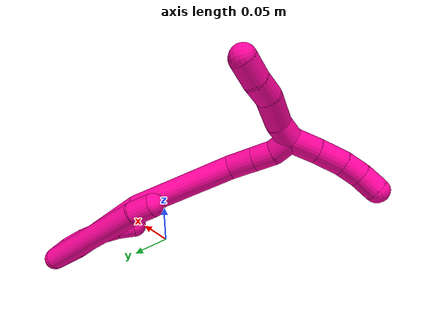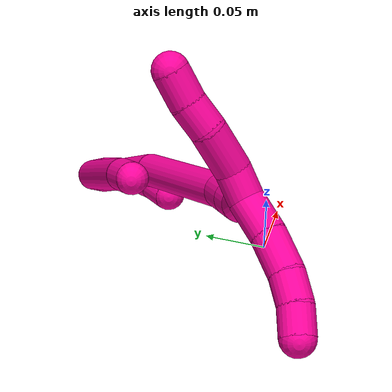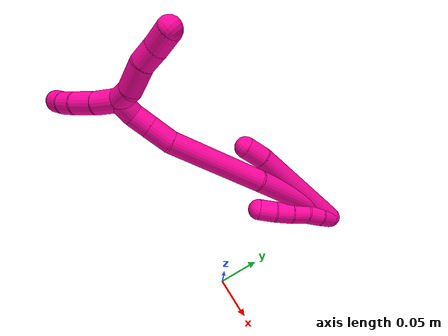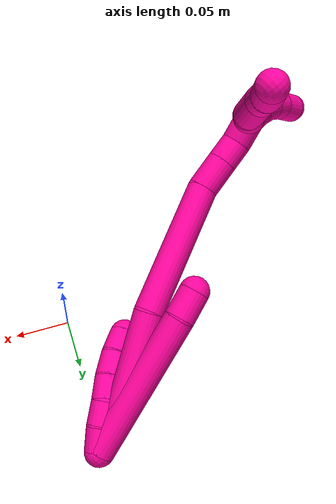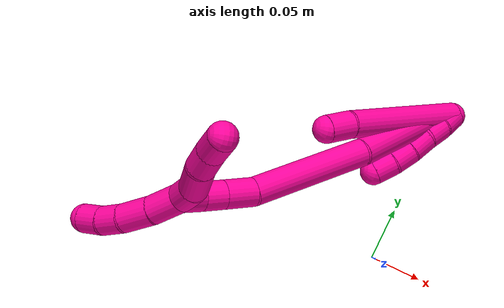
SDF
<sdf version="1.7">
 <world name="default">
  <model name="18">
   <static>0</static>
   <link name="18">
    <collision name="collision-cylinder-e_1_2_8">
     <pose>0.010411 -0.016113 0.059724 0.263521 0.166741 0.022148</pose>
     <geometry><cylinder><radius>0.0125</radius><length>0.125458</length></cylinder></geometry>
     <surface>
      <friction><ode><mu>1.16</mu><mu2>1.16</mu2><slip1>0</slip1><slip2>0</slip2></ode></friction>
      <contact><ode><kp>1e+06</kp><kd>1</kd><max_vel>0</max_vel><min_depth>0.001</min_depth></ode></contact>
     </surface>
    </collision>
    <visual name="visual-cylinder-e_1_2_8">
     <pose>0.010411 -0.016113 0.059724 0.263521 0.166741 0.022148</pose>
     <geometry><cylinder><radius>0.0125</radius><length>0.125458</length></cylinder></geometry>
     <material><ambient>1 0.007843 0.615686 1</ambient></material>
    </visual>
    <collision name="collision-cylinder-e_2_8_6">
     <pose>0.021199 -0.036473 0.130954 0.353585 0.030724 0.00549</pose>
     <geometry><cylinder><radius>0.0125</radius><length>0.024542</length></cylinder></geometry>
     <surface>
      <friction><ode><mu>1.16</mu><mu2>1.16</mu2><slip1>0</slip1><slip2>0</slip2></ode></friction>
      <contact><ode><kp>1e+06</kp><kd>1</kd><max_vel>0</max_vel><min_depth>0.001</min_depth></ode></contact>
     </surface>
    </collision>
    <visual name="visual-cylinder-e_2_8_6">
     <pose>0.021199 -0.036473 0.130954 0.353585 0.030724 0.00549</pose>
     <geometry><cylinder><radius>0.0125</radius><length>0.024542</length></cylinder></geometry>
     <material><ambient>1 0.007843 0.615686 1</ambient></material>
    </visual>
    <collision name="collision-cylinder-e_1_2_9">
     <pose>0.001923 -0.006712 0.007159 0.753142 0.193514 0.076726</pose>
     <geometry><cylinder><radius>0.0125</radius><length>0.02</length></cylinder></geometry>
     <surface>
      <friction><ode><mu>1.16</mu><mu2>1.16</mu2><slip1>0</slip1><slip2>0</slip2></ode></friction>
      <contact><ode><kp>1e+06</kp><kd>1</kd><max_vel>0</max_vel><min_depth>0.001</min_depth></ode></contact>
     </surface>
    </collision>
    <visual name="visual-cylinder-e_1_2_9">
     <pose>0.001923 -0.006712 0.007159 0.753142 0.193514 0.076726</pose>
     <geometry><cylinder><radius>0.0125</radius><length>0.02</length></cylinder></geometry>
     <material><ambient>1 0.007843 0.615686 1</ambient></material>
    </visual>
    <collision name="collision-cylinder-e_2_9_10">
     <pose>0.004455 -0.019759 0.022031 0.687701 0.060919 0.021819</pose>
     <geometry><cylinder><radius>0.0125</radius><length>0.02</length></cylinder></geometry>
     <surface>
      <friction><ode><mu>1.16</mu><mu2>1.16</mu2><slip1>0</slip1><slip2>0</slip2></ode></friction>
      <contact><ode><kp>1e+06</kp><kd>1</kd><max_vel>0</max_vel><min_depth>0.001</min_depth></ode></contact>
     </surface>
    </collision>
    <visual name="visual-cylinder-e_2_9_10">
     <pose>0.004455 -0.019759 0.022031 0.687701 0.060919 0.021819</pose>
     <geometry><cylinder><radius>0.0125</radius><length>0.02</length></cylinder></geometry>
     <material><ambient>1 0.007843 0.615686 1</ambient></material>
    </visual>
    <collision name="collision-cylinder-e_3_10_11">
     <pose>0.003885 -0.033346 0.036529 0.818539 -0.11816 -0.051302</pose>
     <geometry><cylinder><radius>0.0125</radius><length>0.02</length></cylinder></geometry>
     <surface>
      <friction><ode><mu>1.16</mu><mu2>1.16</mu2><slip1>0</slip1><slip2>0</slip2></ode></friction>
      <contact><ode><kp>1e+06</kp><kd>1</kd><max_vel>0</max_vel><min_depth>0.001</min_depth></ode></contact>
     </surface>
    </collision>
    <visual name="visual-cylinder-e_3_10_11">
     <pose>0.003885 -0.033346 0.036529 0.818539 -0.11816 -0.051302</pose>
     <geometry><cylinder><radius>0.0125</radius><length>0.02</length></cylinder></geometry>
     <material><ambient>1 0.007843 0.615686 1</ambient></material>
    </visual>
    <collision name="collision-cylinder-e_4_11_12">
     <pose>0.000738 -0.047117 0.050636 0.72761 -0.198083 -0.075632</pose>
     <geometry><cylinder><radius>0.0125</radius><length>0.02</length></cylinder></geometry>
     <surface>
      <friction><ode><mu>1.16</mu><mu2>1.16</mu2><slip1>0</slip1><slip2>0</slip2></ode></friction>
      <contact><ode><kp>1e+06</kp><kd>1</kd><max_vel>0</max_vel><min_depth>0.001</min_depth></ode></contact>
     </surface>
    </collision>
    <visual name="visual-cylinder-e_4_11_12">
     <pose>0.000738 -0.047117 0.050636 0.72761 -0.198083 -0.075632</pose>
     <geometry><cylinder><radius>0.0125</radius><length>0.02</length></cylinder></geometry>
     <material><ambient>1 0.007843 0.615686 1</ambient></material>
    </visual>
    <collision name="collision-cylinder-e_5_12_5">
     <pose>-0.004317 -0.05927 0.065622 0.63374 -0.31386 -0.103681</pose>
     <geometry><cylinder><radius>0.0125</radius><length>0.02</length></cylinder></geometry>
     <surface>
      <friction><ode><mu>1.16</mu><mu2>1.16</mu2><slip1>0</slip1><slip2>0</slip2></ode></friction>
      <contact><ode><kp>1e+06</kp><kd>1</kd><max_vel>0</max_vel><min_depth>0.001</min_depth></ode></contact>
     </surface>
    </collision>
    <visual name="visual-cylinder-e_5_12_5">
     <pose>-0.004317 -0.05927 0.065622 0.63374 -0.31386 -0.103681</pose>
     <geometry><cylinder><radius>0.0125</radius><length>0.02</length></cylinder></geometry>
     <material><ambient>1 0.007843 0.615686 1</ambient></material>
    </visual>
    <collision name="collision-cylinder-e_1_2_13">
     <pose>0.002021 -0.006026 0.016706 0.346188 0.1133 0.01983</pose>
     <geometry><cylinder><radius>0.0125</radius><length>0.035747</length></cylinder></geometry>
     <surface>
      <friction><ode><mu>1.16</mu><mu2>1.16</mu2><slip1>0</slip1><slip2>0</slip2></ode></friction>
      <contact><ode><kp>1e+06</kp><kd>1</kd><max_vel>0</max_vel><min_depth>0.001</min_depth></ode></contact>
     </surface>
    </collision>
    <visual name="visual-cylinder-e_1_2_13">
     <pose>0.002021 -0.006026 0.016706 0.346188 0.1133 0.01983</pose>
     <geometry><cylinder><radius>0.0125</radius><length>0.035747</length></cylinder></geometry>
     <material><ambient>1 0.007843 0.615686 1</ambient></material>
    </visual>
    <collision name="collision-cylinder-e_2_13_14">
     <pose>0.011636 -0.033124 0.068566 0.539979 0.183213 0.050835</pose>
     <geometry><cylinder><radius>0.0125</radius><length>0.083369</length></cylinder></geometry>
     <surface>
      <friction><ode><mu>1.16</mu><mu2>1.16</mu2><slip1>0</slip1><slip2>0</slip2></ode></friction>
      <contact><ode><kp>1e+06</kp><kd>1</kd><max_vel>0</max_vel><min_depth>0.001</min_depth></ode></contact>
     </surface>
    </collision>
    <visual name="visual-cylinder-e_2_13_14">
     <pose>0.011636 -0.033124 0.068566 0.539979 0.183213 0.050835</pose>
     <geometry><cylinder><radius>0.0125</radius><length>0.083369</length></cylinder></geometry>
     <material><ambient>1 0.007843 0.615686 1</ambient></material>
    </visual>
    <collision name="collision-cylinder-e_3_14_15">
     <pose>0.019029 -0.079683 0.153324 0.474641 -0.003606 -0.000872</pose>
     <geometry><cylinder><radius>0.0125</radius><length>0.111534</length></cylinder></geometry>
     <surface>
      <friction><ode><mu>1.16</mu><mu2>1.16</mu2><slip1>0</slip1><slip2>0</slip2></ode></friction>
      <contact><ode><kp>1e+06</kp><kd>1</kd><max_vel>0</max_vel><min_depth>0.001</min_depth></ode></contact>
     </surface>
    </collision>
    <visual name="visual-cylinder-e_3_14_15">
     <pose>0.019029 -0.079683 0.153324 0.474641 -0.003606 -0.000872</pose>
     <geometry><cylinder><radius>0.0125</radius><length>0.111534</length></cylinder></geometry>
     <material><ambient>1 0.007843 0.615686 1</ambient></material>
    </visual>
    <collision name="collision-cylinder-e_4_15_16">
     <pose>0.018699 -0.108469 0.216338 0.241223 -0.009333 -0.001131</pose>
     <geometry><cylinder><radius>0.0125</radius><length>0.027626</length></cylinder></geometry>
     <surface>
      <friction><ode><mu>1.16</mu><mu2>1.16</mu2><slip1>0</slip1><slip2>0</slip2></ode></friction>
      <contact><ode><kp>1e+06</kp><kd>1</kd><max_vel>0</max_vel><min_depth>0.001</min_depth></ode></contact>
     </surface>
    </collision>
    <visual name="visual-cylinder-e_4_15_16">
     <pose>0.018699 -0.108469 0.216338 0.241223 -0.009333 -0.001131</pose>
     <geometry><cylinder><radius>0.0125</radius><length>0.027626</length></cylinder></geometry>
     <material><ambient>1 0.007843 0.615686 1</ambient></material>
    </visual>
    <collision name="collision-cylinder-e_5_16_17">
     <pose>0.01848 -0.114179 0.239816 0.235121 -0.00872 -0.00103</pose>
     <geometry><cylinder><radius>0.0125</radius><length>0.0207</length></cylinder></geometry>
     <surface>
      <friction><ode><mu>1.16</mu><mu2>1.16</mu2><slip1>0</slip1><slip2>0</slip2></ode></friction>
      <contact><ode><kp>1e+06</kp><kd>1</kd><max_vel>0</max_vel><min_depth>0.001</min_depth></ode></contact>
     </surface>
    </collision>
    <visual name="visual-cylinder-e_5_16_17">
     <pose>0.01848 -0.114179 0.239816 0.235121 -0.00872 -0.00103</pose>
     <geometry><cylinder><radius>0.0125</radius><length>0.0207</length></cylinder></geometry>
     <material><ambient>1 0.007843 0.615686 1</ambient></material>
    </visual>
    <collision name="collision-cylinder-e_6_17_1">
     <pose>0.021775 -0.118611 0.259625 0.20446 0.327852 0.033935</pose>
     <geometry><cylinder><radius>0.0125</radius><length>0.021023</length></cylinder></geometry>
     <surface>
      <friction><ode><mu>1.16</mu><mu2>1.16</mu2><slip1>0</slip1><slip2>0</slip2></ode></friction>
      <contact><ode><kp>1e+06</kp><kd>1</kd><max_vel>0</max_vel><min_depth>0.001</min_depth></ode></contact>
     </surface>
    </collision>
    <visual name="visual-cylinder-e_6_17_1">
     <pose>0.021775 -0.118611 0.259625 0.20446 0.327852 0.033935</pose>
     <geometry><cylinder><radius>0.0125</radius><length>0.021023</length></cylinder></geometry>
     <material><ambient>1 0.007843 0.615686 1</ambient></material>
    </visual>
    <collision name="collision-cylinder-e_1_1_18">
     <pose>0.035371 -0.117098 0.268556 -1.79708 1.22957 -1.45127</pose>
     <geometry><cylinder><radius>0.0125</radius><length>0.021672</length></cylinder></geometry>
     <surface>
      <friction><ode><mu>1.16</mu><mu2>1.16</mu2><slip1>0</slip1><slip2>0</slip2></ode></friction>
      <contact><ode><kp>1e+06</kp><kd>1</kd><max_vel>0</max_vel><min_depth>0.001</min_depth></ode></contact>
     </surface>
    </collision>
    <visual name="visual-cylinder-e_1_1_18">
     <pose>0.035371 -0.117098 0.268556 -1.79708 1.22957 -1.45127</pose>
     <geometry><cylinder><radius>0.0125</radius><length>0.021672</length></cylinder></geometry>
     <material><ambient>1 0.007843 0.615686 1</ambient></material>
    </visual>
    <collision name="collision-cylinder-e_2_18_19">
     <pose>0.060039 -0.10662 0.271735 -1.04893 1.06484 -0.656978</pose>
     <geometry><cylinder><radius>0.0125</radius><length>0.033056</length></cylinder></geometry>
     <surface>
      <friction><ode><mu>1.16</mu><mu2>1.16</mu2><slip1>0</slip1><slip2>0</slip2></ode></friction>
      <contact><ode><kp>1e+06</kp><kd>1</kd><max_vel>0</max_vel><min_depth>0.001</min_depth></ode></contact>
     </surface>
    </collision>
    <visual name="visual-cylinder-e_2_18_19">
     <pose>0.060039 -0.10662 0.271735 -1.04893 1.06484 -0.656978</pose>
     <geometry><cylinder><radius>0.0125</radius><length>0.033056</length></cylinder></geometry>
     <material><ambient>1 0.007843 0.615686 1</ambient></material>
    </visual>
    <collision name="collision-cylinder-e_3_19_20">
     <pose>0.083745 -0.094045 0.276111 -1.50299 1.02283 -0.96595</pose>
     <geometry><cylinder><radius>0.0125</radius><length>0.021669</length></cylinder></geometry>
     <surface>
      <friction><ode><mu>1.16</mu><mu2>1.16</mu2><slip1>0</slip1><slip2>0</slip2></ode></friction>
      <contact><ode><kp>1e+06</kp><kd>1</kd><max_vel>0</max_vel><min_depth>0.001</min_depth></ode></contact>
     </surface>
    </collision>
    <visual name="visual-cylinder-e_3_19_20">
     <pose>0.083745 -0.094045 0.276111 -1.50299 1.02283 -0.96595</pose>
     <geometry><cylinder><radius>0.0125</radius><length>0.021669</length></cylinder></geometry>
     <material><ambient>1 0.007843 0.615686 1</ambient></material>
    </visual>
    <collision name="collision-cylinder-e_4_20_4">
     <pose>0.103873 -0.083906 0.27725 -1.40452 1.17308 -1.0245</pose>
     <geometry><cylinder><radius>0.0125</radius><length>0.023603</length></cylinder></geometry>
     <surface>
      <friction><ode><mu>1.16</mu><mu2>1.16</mu2><slip1>0</slip1><slip2>0</slip2></ode></friction>
      <contact><ode><kp>1e+06</kp><kd>1</kd><max_vel>0</max_vel><min_depth>0.001</min_depth></ode></contact>
     </surface>
    </collision>
    <visual name="visual-cylinder-e_4_20_4">
     <pose>0.103873 -0.083906 0.27725 -1.40452 1.17308 -1.0245</pose>
     <geometry><cylinder><radius>0.0125</radius><length>0.023603</length></cylinder></geometry>
     <material><ambient>1 0.007843 0.615686 1</ambient></material>
    </visual>
    <collision name="collision-cylinder-e_1_1_21">
     <pose>0.01456 -0.126624 0.276732 0.683164 -0.840402 -0.315068</pose>
     <geometry><cylinder><radius>0.0125</radius><length>0.028458</length></cylinder></geometry>
     <surface>
      <friction><ode><mu>1.16</mu><mu2>1.16</mu2><slip1>0</slip1><slip2>0</slip2></ode></friction>
      <contact><ode><kp>1e+06</kp><kd>1</kd><max_vel>0</max_vel><min_depth>0.001</min_depth></ode></contact>
     </surface>
    </collision>
    <visual name="visual-cylinder-e_1_1_21">
     <pose>0.01456 -0.126624 0.276732 0.683164 -0.840402 -0.315068</pose>
     <geometry><cylinder><radius>0.0125</radius><length>0.028458</length></cylinder></geometry>
     <material><ambient>1 0.007843 0.615686 1</ambient></material>
    </visual>
    <collision name="collision-cylinder-e_2_21_22">
     <pose>-0.007183 -0.137062 0.292232 0.500031 -0.876796 -0.238303</pose>
     <geometry><cylinder><radius>0.0125</radius><length>0.028994</length></cylinder></geometry>
     <surface>
      <friction><ode><mu>1.16</mu><mu2>1.16</mu2><slip1>0</slip1><slip2>0</slip2></ode></friction>
      <contact><ode><kp>1e+06</kp><kd>1</kd><max_vel>0</max_vel><min_depth>0.001</min_depth></ode></contact>
     </surface>
    </collision>
    <visual name="visual-cylinder-e_2_21_22">
     <pose>-0.007183 -0.137062 0.292232 0.500031 -0.876796 -0.238303</pose>
     <geometry><cylinder><radius>0.0125</radius><length>0.028994</length></cylinder></geometry>
     <material><ambient>1 0.007843 0.615686 1</ambient></material>
    </visual>
    <collision name="collision-cylinder-e_3_22_23">
     <pose>-0.027324 -0.143223 0.305905 0.300486 -0.998605 -0.164755</pose>
     <geometry><cylinder><radius>0.0125</radius><length>0.021405</length></cylinder></geometry>
     <surface>
      <friction><ode><mu>1.16</mu><mu2>1.16</mu2><slip1>0</slip1><slip2>0</slip2></ode></friction>
      <contact><ode><kp>1e+06</kp><kd>1</kd><max_vel>0</max_vel><min_depth>0.001</min_depth></ode></contact>
     </surface>
    </collision>
    <visual name="visual-cylinder-e_3_22_23">
     <pose>-0.027324 -0.143223 0.305905 0.300486 -0.998605 -0.164755</pose>
     <geometry><cylinder><radius>0.0125</radius><length>0.021405</length></cylinder></geometry>
     <material><ambient>1 0.007843 0.615686 1</ambient></material>
    </visual>
    <collision name="collision-cylinder-e_4_23_3">
     <pose>-0.045566 -0.144535 0.316553 -0.078794 -1.06429 0.04641</pose>
     <geometry><cylinder><radius>0.0125</radius><length>0.021143</length></cylinder></geometry>
     <surface>
      <friction><ode><mu>1.16</mu><mu2>1.16</mu2><slip1>0</slip1><slip2>0</slip2></ode></friction>
      <contact><ode><kp>1e+06</kp><kd>1</kd><max_vel>0</max_vel><min_depth>0.001</min_depth></ode></contact>
     </surface>
    </collision>
    <visual name="visual-cylinder-e_4_23_3">
     <pose>-0.045566 -0.144535 0.316553 -0.078794 -1.06429 0.04641</pose>
     <geometry><cylinder><radius>0.0125</radius><length>0.021143</length></cylinder></geometry>
     <material><ambient>1 0.007843 0.615686 1</ambient></material>
    </visual>
    <collision name="collision-sphere-3">
     <pose>-0.05481 -0.144131 0.321665 0 -0 0</pose>
     <geometry><sphere><radius>0.0125</radius></sphere></geometry>
     <surface>
      <friction><ode><mu>1.16</mu><mu2>1.16</mu2><slip1>0</slip1><slip2>0</slip2></ode></friction>
      <contact><ode><kp>1e+06</kp><kd>1</kd><max_vel>0</max_vel><min_depth>0.001</min_depth></ode></contact>
     </surface>
    </collision>
    <visual name="visual-sphere-3">
     <pose>-0.05481 -0.144131 0.321665 0 -0 0</pose>
     <geometry><sphere><radius>0.0125</radius></sphere></geometry>
     <material><ambient>1 0.007843 0.615686 1</ambient></material>
    </visual>
    <collision name="collision-sphere-23">
     <pose>-0.036322 -0.144939 0.31144 0 -0 0</pose>
     <geometry><sphere><radius>0.0125</radius></sphere></geometry>
     <surface>
      <friction><ode><mu>1.16</mu><mu2>1.16</mu2><slip1>0</slip1><slip2>0</slip2></ode></friction>
      <contact><ode><kp>1e+06</kp><kd>1</kd><max_vel>0</max_vel><min_depth>0.001</min_depth></ode></contact>
     </surface>
    </collision>
    <visual name="visual-sphere-23">
     <pose>-0.036322 -0.144939 0.31144 0 -0 0</pose>
     <geometry><sphere><radius>0.0125</radius></sphere></geometry>
     <material><ambient>1 0.007843 0.615686 1</ambient></material>
    </visual>
    <collision name="collision-sphere-22">
     <pose>-0.018327 -0.141508 0.300369 0 -0 0</pose>
     <geometry><sphere><radius>0.0125</radius></sphere></geometry>
     <surface>
      <friction><ode><mu>1.16</mu><mu2>1.16</mu2><slip1>0</slip1><slip2>0</slip2></ode></friction>
      <contact><ode><kp>1e+06</kp><kd>1</kd><max_vel>0</max_vel><min_depth>0.001</min_depth></ode></contact>
     </surface>
    </collision>
    <visual name="visual-sphere-22">
     <pose>-0.018327 -0.141508 0.300369 0 -0 0</pose>
     <geometry><sphere><radius>0.0125</radius></sphere></geometry>
     <material><ambient>1 0.007843 0.615686 1</ambient></material>
    </visual>
    <collision name="collision-sphere-21">
     <pose>0.003961 -0.132617 0.284094 0 -0 0</pose>
     <geometry><sphere><radius>0.0125</radius></sphere></geometry>
     <surface>
      <friction><ode><mu>1.16</mu><mu2>1.16</mu2><slip1>0</slip1><slip2>0</slip2></ode></friction>
      <contact><ode><kp>1e+06</kp><kd>1</kd><max_vel>0</max_vel><min_depth>0.001</min_depth></ode></contact>
     </surface>
    </collision>
    <visual name="visual-sphere-21">
     <pose>0.003961 -0.132617 0.284094 0 -0 0</pose>
     <geometry><sphere><radius>0.0125</radius></sphere></geometry>
     <material><ambient>1 0.007843 0.615686 1</ambient></material>
    </visual>
    <collision name="collision-sphere-4">
     <pose>0.114754 -0.079398 0.278006 0 -0 0</pose>
     <geometry><sphere><radius>0.0125</radius></sphere></geometry>
     <surface>
      <friction><ode><mu>1.16</mu><mu2>1.16</mu2><slip1>0</slip1><slip2>0</slip2></ode></friction>
      <contact><ode><kp>1e+06</kp><kd>1</kd><max_vel>0</max_vel><min_depth>0.001</min_depth></ode></contact>
     </surface>
    </collision>
    <visual name="visual-sphere-4">
     <pose>0.114754 -0.079398 0.278006 0 -0 0</pose>
     <geometry><sphere><radius>0.0125</radius></sphere></geometry>
     <material><ambient>1 0.007843 0.615686 1</ambient></material>
    </visual>
    <collision name="collision-sphere-20">
     <pose>0.092993 -0.088414 0.276493 0 -0 0</pose>
     <geometry><sphere><radius>0.0125</radius></sphere></geometry>
     <surface>
      <friction><ode><mu>1.16</mu><mu2>1.16</mu2><slip1>0</slip1><slip2>0</slip2></ode></friction>
      <contact><ode><kp>1e+06</kp><kd>1</kd><max_vel>0</max_vel><min_depth>0.001</min_depth></ode></contact>
     </surface>
    </collision>
    <visual name="visual-sphere-20">
     <pose>0.092993 -0.088414 0.276493 0 -0 0</pose>
     <geometry><sphere><radius>0.0125</radius></sphere></geometry>
     <material><ambient>1 0.007843 0.615686 1</ambient></material>
    </visual>
    <collision name="collision-sphere-11">
     <pose>0.002706 -0.040596 0.043314 0 -0 0</pose>
     <geometry><sphere><radius>0.0125</radius></sphere></geometry>
     <surface>
      <friction><ode><mu>1.16</mu><mu2>1.16</mu2><slip1>0</slip1><slip2>0</slip2></ode></friction>
      <contact><ode><kp>1e+06</kp><kd>1</kd><max_vel>0</max_vel><min_depth>0.001</min_depth></ode></contact>
     </surface>
    </collision>
    <visual name="visual-sphere-11">
     <pose>0.002706 -0.040596 0.043314 0 -0 0</pose>
     <geometry><sphere><radius>0.0125</radius></sphere></geometry>
     <material><ambient>1 0.007843 0.615686 1</ambient></material>
    </visual>
    <collision name="collision-sphere-10">
     <pose>0.005064 -0.026095 0.029744 0 -0 0</pose>
     <geometry><sphere><radius>0.0125</radius></sphere></geometry>
     <surface>
      <friction><ode><mu>1.16</mu><mu2>1.16</mu2><slip1>0</slip1><slip2>0</slip2></ode></friction>
      <contact><ode><kp>1e+06</kp><kd>1</kd><max_vel>0</max_vel><min_depth>0.001</min_depth></ode></contact>
     </surface>
    </collision>
    <visual name="visual-sphere-10">
     <pose>0.005064 -0.026095 0.029744 0 -0 0</pose>
     <geometry><sphere><radius>0.0125</radius></sphere></geometry>
     <material><ambient>1 0.007843 0.615686 1</ambient></material>
    </visual>
    <collision name="collision-sphere-6">
     <pose>0.021576 -0.04072 0.14246 0 -0 0</pose>
     <geometry><sphere><radius>0.0125</radius></sphere></geometry>
     <surface>
      <friction><ode><mu>1.16</mu><mu2>1.16</mu2><slip1>0</slip1><slip2>0</slip2></ode></friction>
      <contact><ode><kp>1e+06</kp><kd>1</kd><max_vel>0</max_vel><min_depth>0.001</min_depth></ode></contact>
     </surface>
    </collision>
    <visual name="visual-sphere-6">
     <pose>0.021576 -0.04072 0.14246 0 -0 0</pose>
     <geometry><sphere><radius>0.0125</radius></sphere></geometry>
     <material><ambient>1 0.007843 0.615686 1</ambient></material>
    </visual>
    <collision name="collision-sphere-9">
     <pose>0.003846 -0.013423 0.014319 0 -0 0</pose>
     <geometry><sphere><radius>0.0125</radius></sphere></geometry>
     <surface>
      <friction><ode><mu>1.16</mu><mu2>1.16</mu2><slip1>0</slip1><slip2>0</slip2></ode></friction>
      <contact><ode><kp>1e+06</kp><kd>1</kd><max_vel>0</max_vel><min_depth>0.001</min_depth></ode></contact>
     </surface>
    </collision>
    <visual name="visual-sphere-9">
     <pose>0.003846 -0.013423 0.014319 0 -0 0</pose>
     <geometry><sphere><radius>0.0125</radius></sphere></geometry>
     <material><ambient>1 0.007843 0.615686 1</ambient></material>
    </visual>
    <collision name="collision-sphere-2">
     <geometry><sphere><radius>0.0125</radius></sphere></geometry>
     <surface>
      <friction><ode><mu>1.16</mu><mu2>1.16</mu2><slip1>0</slip1><slip2>0</slip2></ode></friction>
      <contact><ode><kp>1e+06</kp><kd>1</kd><max_vel>0</max_vel><min_depth>0.001</min_depth></ode></contact>
     </surface>
    </collision>
    <visual name="visual-sphere-2">
     <geometry><sphere><radius>0.0125</radius></sphere></geometry>
     <material><ambient>1 0.007843 0.615686 1</ambient></material>
    </visual>
    <collision name="collision-sphere-19">
     <pose>0.074497 -0.099676 0.275728 0 -0 0</pose>
     <geometry><sphere><radius>0.0125</radius></sphere></geometry>
     <surface>
      <friction><ode><mu>1.16</mu><mu2>1.16</mu2><slip1>0</slip1><slip2>0</slip2></ode></friction>
      <contact><ode><kp>1e+06</kp><kd>1</kd><max_vel>0</max_vel><min_depth>0.001</min_depth></ode></contact>
     </surface>
    </collision>
    <visual name="visual-sphere-19">
     <pose>0.074497 -0.099676 0.275728 0 -0 0</pose>
     <geometry><sphere><radius>0.0125</radius></sphere></geometry>
     <material><ambient>1 0.007843 0.615686 1</ambient></material>
    </visual>
    <collision name="collision-sphere-8">
     <pose>0.020822 -0.032226 0.119447 0 -0 0</pose>
     <geometry><sphere><radius>0.0125</radius></sphere></geometry>
     <surface>
      <friction><ode><mu>1.16</mu><mu2>1.16</mu2><slip1>0</slip1><slip2>0</slip2></ode></friction>
      <contact><ode><kp>1e+06</kp><kd>1</kd><max_vel>0</max_vel><min_depth>0.001</min_depth></ode></contact>
     </surface>
    </collision>
    <visual name="visual-sphere-8">
     <pose>0.020822 -0.032226 0.119447 0 -0 0</pose>
     <geometry><sphere><radius>0.0125</radius></sphere></geometry>
     <material><ambient>1 0.007843 0.615686 1</ambient></material>
    </visual>
    <collision name="collision-sphere-12">
     <pose>-0.00123 -0.053638 0.057958 0 -0 0</pose>
     <geometry><sphere><radius>0.0125</radius></sphere></geometry>
     <surface>
      <friction><ode><mu>1.16</mu><mu2>1.16</mu2><slip1>0</slip1><slip2>0</slip2></ode></friction>
      <contact><ode><kp>1e+06</kp><kd>1</kd><max_vel>0</max_vel><min_depth>0.001</min_depth></ode></contact>
     </surface>
    </collision>
    <visual name="visual-sphere-12">
     <pose>-0.00123 -0.053638 0.057958 0 -0 0</pose>
     <geometry><sphere><radius>0.0125</radius></sphere></geometry>
     <material><ambient>1 0.007843 0.615686 1</ambient></material>
    </visual>
    <collision name="collision-sphere-5">
     <pose>-0.007404 -0.064903 0.073287 0 -0 0</pose>
     <geometry><sphere><radius>0.0125</radius></sphere></geometry>
     <surface>
      <friction><ode><mu>1.16</mu><mu2>1.16</mu2><slip1>0</slip1><slip2>0</slip2></ode></friction>
      <contact><ode><kp>1e+06</kp><kd>1</kd><max_vel>0</max_vel><min_depth>0.001</min_depth></ode></contact>
     </surface>
    </collision>
    <visual name="visual-sphere-5">
     <pose>-0.007404 -0.064903 0.073287 0 -0 0</pose>
     <geometry><sphere><radius>0.0125</radius></sphere></geometry>
     <material><ambient>1 0.007843 0.615686 1</ambient></material>
    </visual>
    <collision name="collision-sphere-13">
     <pose>0.004042 -0.012052 0.033411 0 -0 0</pose>
     <geometry><sphere><radius>0.0125</radius></sphere></geometry>
     <surface>
      <friction><ode><mu>1.16</mu><mu2>1.16</mu2><slip1>0</slip1><slip2>0</slip2></ode></friction>
      <contact><ode><kp>1e+06</kp><kd>1</kd><max_vel>0</max_vel><min_depth>0.001</min_depth></ode></contact>
     </surface>
    </collision>
    <visual name="visual-sphere-13">
     <pose>0.004042 -0.012052 0.033411 0 -0 0</pose>
     <geometry><sphere><radius>0.0125</radius></sphere></geometry>
     <material><ambient>1 0.007843 0.615686 1</ambient></material>
    </visual>
    <collision name="collision-sphere-14">
     <pose>0.019231 -0.054196 0.103722 0 -0 0</pose>
     <geometry><sphere><radius>0.0125</radius></sphere></geometry>
     <surface>
      <friction><ode><mu>1.16</mu><mu2>1.16</mu2><slip1>0</slip1><slip2>0</slip2></ode></friction>
      <contact><ode><kp>1e+06</kp><kd>1</kd><max_vel>0</max_vel><min_depth>0.001</min_depth></ode></contact>
     </surface>
    </collision>
    <visual name="visual-sphere-14">
     <pose>0.019231 -0.054196 0.103722 0 -0 0</pose>
     <geometry><sphere><radius>0.0125</radius></sphere></geometry>
     <material><ambient>1 0.007843 0.615686 1</ambient></material>
    </visual>
    <collision name="collision-sphere-15">
     <pose>0.018828 -0.105169 0.202926 0 -0 0</pose>
     <geometry><sphere><radius>0.0125</radius></sphere></geometry>
     <surface>
      <friction><ode><mu>1.16</mu><mu2>1.16</mu2><slip1>0</slip1><slip2>0</slip2></ode></friction>
      <contact><ode><kp>1e+06</kp><kd>1</kd><max_vel>0</max_vel><min_depth>0.001</min_depth></ode></contact>
     </surface>
    </collision>
    <visual name="visual-sphere-15">
     <pose>0.018828 -0.105169 0.202926 0 -0 0</pose>
     <geometry><sphere><radius>0.0125</radius></sphere></geometry>
     <material><ambient>1 0.007843 0.615686 1</ambient></material>
    </visual>
    <collision name="collision-sphere-16">
     <pose>0.018571 -0.111768 0.229751 0 -0 0</pose>
     <geometry><sphere><radius>0.0125</radius></sphere></geometry>
     <surface>
      <friction><ode><mu>1.16</mu><mu2>1.16</mu2><slip1>0</slip1><slip2>0</slip2></ode></friction>
      <contact><ode><kp>1e+06</kp><kd>1</kd><max_vel>0</max_vel><min_depth>0.001</min_depth></ode></contact>
     </surface>
    </collision>
    <visual name="visual-sphere-16">
     <pose>0.018571 -0.111768 0.229751 0 -0 0</pose>
     <geometry><sphere><radius>0.0125</radius></sphere></geometry>
     <material><ambient>1 0.007843 0.615686 1</ambient></material>
    </visual>
    <collision name="collision-sphere-17">
     <pose>0.01839 -0.11659 0.24988 0 -0 0</pose>
     <geometry><sphere><radius>0.0125</radius></sphere></geometry>
     <surface>
      <friction><ode><mu>1.16</mu><mu2>1.16</mu2><slip1>0</slip1><slip2>0</slip2></ode></friction>
      <contact><ode><kp>1e+06</kp><kd>1</kd><max_vel>0</max_vel><min_depth>0.001</min_depth></ode></contact>
     </surface>
    </collision>
    <visual name="visual-sphere-17">
     <pose>0.01839 -0.11659 0.24988 0 -0 0</pose>
     <geometry><sphere><radius>0.0125</radius></sphere></geometry>
     <material><ambient>1 0.007843 0.615686 1</ambient></material>
    </visual>
    <collision name="collision-sphere-1">
     <pose>0.02516 -0.120632 0.269369 0 -0 0</pose>
     <geometry><sphere><radius>0.0125</radius></sphere></geometry>
     <surface>
      <friction><ode><mu>1.16</mu><mu2>1.16</mu2><slip1>0</slip1><slip2>0</slip2></ode></friction>
      <contact><ode><kp>1e+06</kp><kd>1</kd><max_vel>0</max_vel><min_depth>0.001</min_depth></ode></contact>
     </surface>
    </collision>
    <visual name="visual-sphere-1">
     <pose>0.02516 -0.120632 0.269369 0 -0 0</pose>
     <geometry><sphere><radius>0.0125</radius></sphere></geometry>
     <material><ambient>1 0.007843 0.615686 1</ambient></material>
    </visual>
    <collision name="collision-sphere-18">
     <pose>0.045582 -0.113564 0.267742 0 -0 0</pose>
     <geometry><sphere><radius>0.0125</radius></sphere></geometry>
     <surface>
      <friction><ode><mu>1.16</mu><mu2>1.16</mu2><slip1>0</slip1><slip2>0</slip2></ode></friction>
      <contact><ode><kp>1e+06</kp><kd>1</kd><max_vel>0</max_vel><min_depth>0.001</min_depth></ode></contact>
     </surface>
    </collision>
    <visual name="visual-sphere-18">
     <pose>0.045582 -0.113564 0.267742 0 -0 0</pose>
     <geometry><sphere><radius>0.0125</radius></sphere></geometry>
     <material><ambient>1 0.007843 0.615686 1</ambient></material>
    </visual>
    <inertial>
     <pose>0.01621 -0.066318 0.148104 0 -0 0</pose>
     <mass>0.75</mass>
     <inertia>
      <ixx>0.000372</ixx>
      <ixy>0</ixy>
      <ixz>0</ixz>
      <iyy>0.000336</iyy>
      <iyz>0</iyz>
      <izz>0.000135</izz>
     </inertia>
    </inertial>
   </link>
   <pose>0.006551 0.152675 0.037974 -0.199118 -1.10554 0.502188</pose>
  </model>
 </world>
</sdf>
